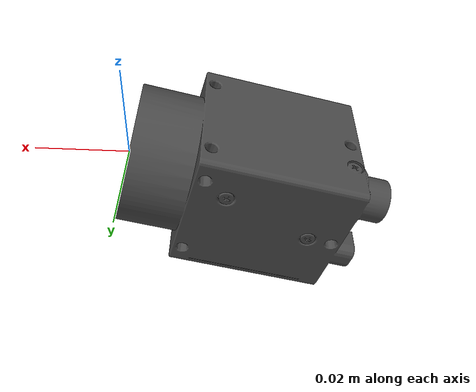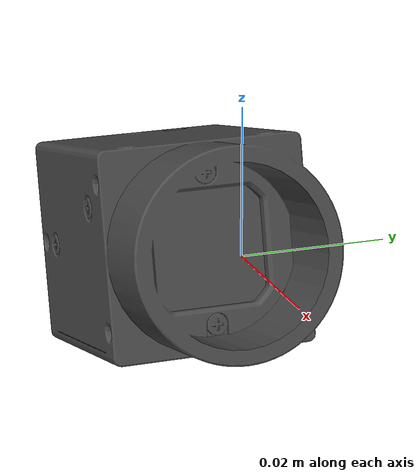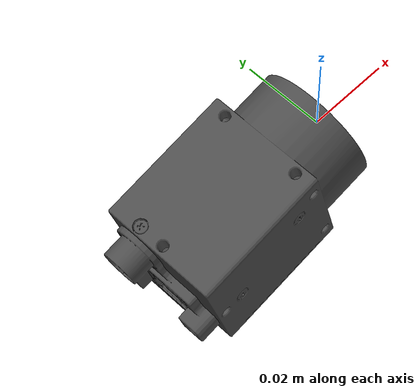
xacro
<?xml version="1.0" encoding="utf-8"?>
<robot name="sentry_camera" xmlns:xacro="http://www.ros.org/wiki/xacro">
<link
    name="Camera_Link">
    <inertial>
      <origin
        xyz="-0.0274889033376683 0.000150005325815505 -0.00772423316738879"
        rpy="0 0 0" />
      <mass
        value="0.0367240036538109" />
      <inertia
        ixx="5.21531598669864E-06"
        ixy="4.31203587568392E-09"
        ixz="3.05359921710556E-07"
        iyy="3.05455837376716E-06"
        iyz="-1.0060479635813E-08"
        izz="3.95383253794392E-06" />
    </inertial>
    <visual>
      <origin
        xyz="0 0 0"
        rpy="0 0 0" />
      <geometry>
        <mesh
          filename="package://sentry_kinematics_sim/meshes/Camera_Link.STL" />
      </geometry>
      <material
        name="">
        <color
          rgba="0.294117647058824 0.294117647058824 0.294117647058824 1" />
      </material>
    </visual>
    <collision>
      <origin
        xyz="0 0 0"
        rpy="0 0 0" />
      <geometry>
        <mesh
          filename="package://sentry_kinematics_sim/meshes/Camera_Link.STL" />
      </geometry>
    </collision>
  </link>

</robot>
